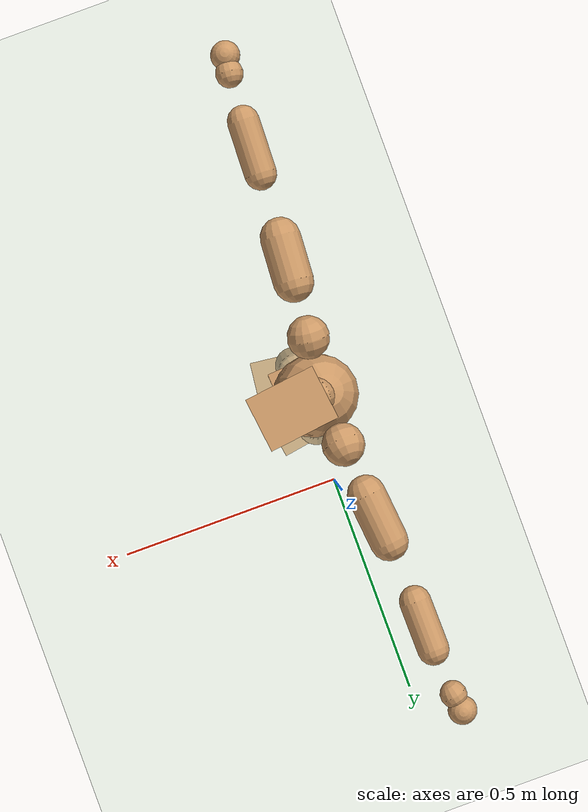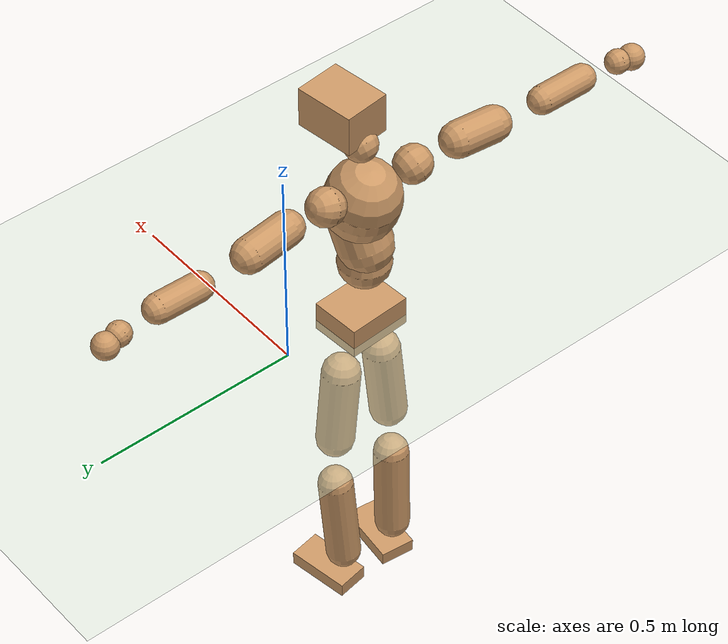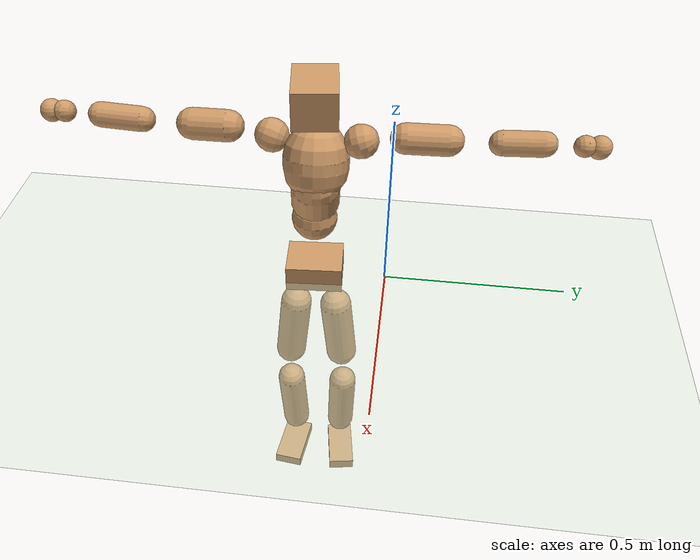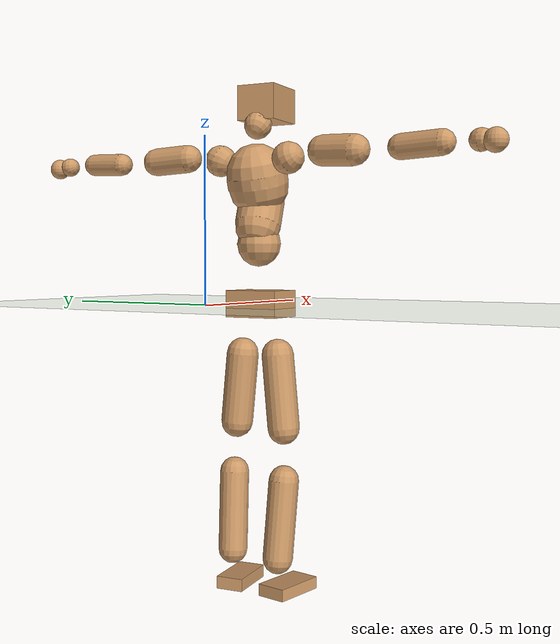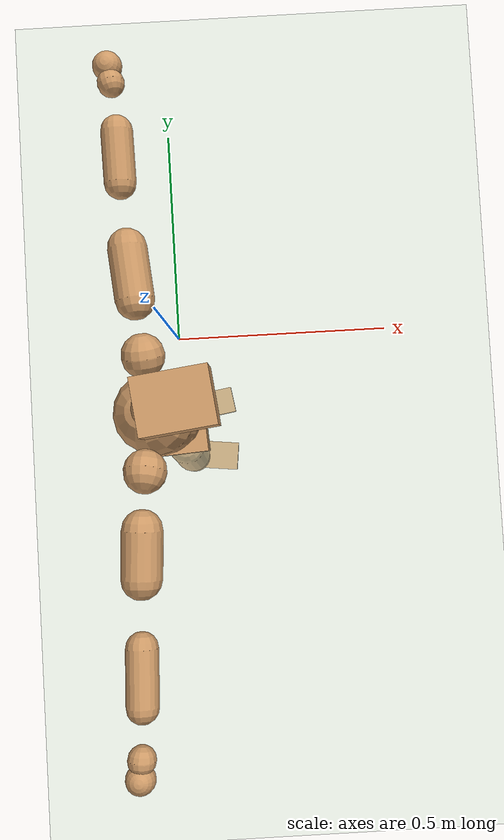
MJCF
<mujoco model="humanoid">
  <compiler coordinate="local" angle="radian"/>
  <default>
    <joint damping="0.0" armature="0.01" stiffness="0.0" limited="true"/>
    <geom conaffinity="1" condim="3" contype="7" margin="0.001" rgba="0.8 0.6 .4 1"/>
  </default>
  <asset>
    <texture type="skybox" builtin="gradient" rgb1=".4 .5 .6" rgb2="0 0 0" width="100" height="100"/>
    <texture builtin="flat" height="1278" mark="cross" markrgb="1 1 1" name="texgeom" random="0.01" rgb1="0.8 0.6 0.4" rgb2="0.8 0.6 0.4" type="cube" width="127"/>
    <texture builtin="checker" height="100" name="texplane" rgb1="0 0 0" rgb2="0.8 0.8 0.8" type="2d" width="100"/>
    <material name="MatPlane" reflectance="0.5" shininess="1" specular="1" texrepeat="60 60" texture="texplane"/>
    <material name="geom" texture="texgeom" texuniform="true"/>
  </asset>
  <worldbody>
    <light cutoff="100" diffuse="1 1 1" dir="-0 0 -1.3" directional="true" exponent="1" pos="0 0 1.3" specular=".1 .1 .1"/>
    <geom conaffinity="1" condim="3" name="floor" pos="0 0 0" rgba="0.8 0.9 0.8 1" size="100 100 .2" type="plane" material="MatPlane"/>
    <body name="Pelvis" pos="-0.0019 -0.1999 0.0218">
      <freejoint name="Pelvis"/>
      <geom type="box" contype="1" conaffinity="1" density="5359.374489" pos="-0.0049 -0.0003 -0.0113" size="0.062 0.0787 0.0381" quat="0.9995 0.0000 0.0000 0.0324" name="Pelvis"/>
      <body name="L_Hip" pos="-0.008 0.0524 -0.0811">
        <joint name="L_Hip_x" type="hinge" pos="0 0 0" axis="1 0 0" stiffness="1600" damping="160" armature="0.02" range="-180.0000 180.0000"/>
        <joint name="L_Hip_y" type="hinge" pos="0 0 0" axis="0 1 0" stiffness="1600" damping="160" armature="0.02" range="-180.0000 180.0000"/>
        <joint name="L_Hip_z" type="hinge" pos="0 0 0" axis="0 0 1" stiffness="1600" damping="160" armature="0.02" range="-180.0000 180.0000"/>
        <geom type="capsule" contype="1" conaffinity="1" density="2040.816327" size="0.046" fromto="-0.0001 0.0074 -0.0756 -0.0004 0.0271 -0.2759" name="L_Hip"/>
        <body name="L_Knee" pos="-0.0004 0.0345 -0.3515">
          <joint name="L_Knee_x" type="hinge" pos="0 0 0" axis="1 0 0" stiffness="1600" damping="160" armature="0.02" range="-180.0000 180.0000"/>
          <joint name="L_Knee_y" type="hinge" pos="0 0 0" axis="0 1 0" stiffness="1600" damping="160" armature="0.02" range="-180.0000 180.0000"/>
          <joint name="L_Knee_z" type="hinge" pos="0 0 0" axis="0 0 1" stiffness="1600" damping="160" armature="0.02" range="-180.0000 180.0000"/>
          <geom type="capsule" contype="1" conaffinity="1" density="1234.567901" size="0.0422" fromto="-0.0059 -0.0022 -0.0720 -0.0244 -0.0092 -0.2983" name="L_Knee"/>
          <body name="L_Ankle" pos="-0.0303 -0.0114 -0.3703">
            <joint name="L_Ankle_x" type="hinge" pos="0 0 0" axis="1 0 0" stiffness="1600" damping="160" armature="0.02" range="-180.0000 180.0000"/>
            <joint name="L_Ankle_y" type="hinge" pos="0 0 0" axis="0 1 0" stiffness="1600" damping="160" armature="0.02" range="-180.0000 180.0000"/>
            <joint name="L_Ankle_z" type="hinge" pos="0 0 0" axis="0 0 1" stiffness="1600" damping="160" armature="0.02" range="-180.0000 180.0000"/>
            <geom type="box" contype="1" conaffinity="1" density="999.999922" pos="0.0555 0.0091 -0.0265" size="0.0789 0.04 0.0182" quat="0.9967 0.0000 0.0000 0.0811" name="L_Ankle"/>
            <body name="L_Toe" pos="0.111 0.0182 -0.053">
              <joint name="L_Toe_x" type="hinge" pos="0 0 0" axis="1 0 0" stiffness="1000" damping="100" armature="0.02" range="-180.0000 180.0000"/>
              <joint name="L_Toe_y" type="hinge" pos="0 0 0" axis="0 1 0" stiffness="1000" damping="100" armature="0.02" range="-180.0000 180.0000"/>
              <joint name="L_Toe_z" type="hinge" pos="0 0 0" axis="0 0 1" stiffness="1000" damping="100" armature="0.02" range="-180.0000 180.0000"/>
              <geom type="box" contype="1" conaffinity="1" density="8949356.832807" pos="0.0000 0.0000 0.0276" size="0.0008 0.002 0.001" quat="0.9961 0.0000 0.0000 0.0882" name="L_Toe"/>
            </body>
          </body>
        </body>
      </body>
      <body name="R_Hip" pos="-0.005 -0.0505 -0.0804">
        <joint name="R_Hip_x" type="hinge" pos="0 0 0" axis="1 0 0" stiffness="1600" damping="160" armature="0.02" range="-180.0000 180.0000"/>
        <joint name="R_Hip_y" type="hinge" pos="0 0 0" axis="0 1 0" stiffness="1600" damping="160" armature="0.02" range="-180.0000 180.0000"/>
        <joint name="R_Hip_z" type="hinge" pos="0 0 0" axis="0 0 1" stiffness="1600" damping="160" armature="0.02" range="-180.0000 180.0000"/>
        <geom type="capsule" contype="1" conaffinity="1" density="2040.816327" size="0.0454" fromto="-0.0005 -0.0078 -0.0750 -0.0019 -0.0295 -0.2839" name="R_Hip"/>
        <body name="R_Knee" pos="-0.0024 -0.0372 -0.3589">
          <joint name="R_Knee_x" type="hinge" pos="0 0 0" axis="1 0 0" stiffness="1600" damping="160" armature="0.02" range="-180.0000 180.0000"/>
          <joint name="R_Knee_y" type="hinge" pos="0 0 0" axis="0 1 0" stiffness="1600" damping="160" armature="0.02" range="-180.0000 180.0000"/>
          <joint name="R_Knee_z" type="hinge" pos="0 0 0" axis="0 0 1" stiffness="1600" damping="160" armature="0.02" range="-180.0000 180.0000"/>
          <geom type="capsule" contype="1" conaffinity="1" density="1234.567901" size="0.0429" fromto="-0.0057 0.0029 -0.0727 -0.0231 0.0118 -0.2971" name="R_Knee"/>
          <body name="R_Ankle" pos="-0.0288 0.0147 -0.3697">
            <joint name="R_Ankle_x" type="hinge" pos="0 0 0" axis="1 0 0" stiffness="1600" damping="160" armature="0.02" range="-180.0000 180.0000"/>
            <joint name="R_Ankle_y" type="hinge" pos="0 0 0" axis="0 1 0" stiffness="1600" damping="160" armature="0.02" range="-180.0000 180.0000"/>
            <joint name="R_Ankle_z" type="hinge" pos="0 0 0" axis="0 0 1" stiffness="1600" damping="160" armature="0.02" range="-180.0000 180.0000"/>
            <geom type="box" contype="1" conaffinity="1" density="999.999982" pos="0.0566 -0.0065 -0.0206" size="0.0801 0.0433 0.0173" quat="0.9984 0.0000 0.0000 -0.0573" name="R_Ankle"/>
            <body name="R_Toe" pos="0.1131 -0.013 -0.0412">
              <joint name="R_Toe_x" type="hinge" pos="0 0 0" axis="1 0 0" stiffness="1000" damping="100" armature="0.02" range="-180.0000 180.0000"/>
              <joint name="R_Toe_y" type="hinge" pos="0 0 0" axis="0 1 0" stiffness="1000" damping="100" armature="0.02" range="-180.0000 180.0000"/>
              <joint name="R_Toe_z" type="hinge" pos="0 0 0" axis="0 0 1" stiffness="1000" damping="100" armature="0.02" range="-180.0000 180.0000"/>
              <geom type="box" contype="1" conaffinity="1" density="8634294.256714" pos="0.0000 0.0000 0.0237" size="0.0008 0.0021 0.001" quat="0.9989 0.0000 0.0000 -0.0477" name="R_Toe"/>
            </body>
          </body>
        </body>
      </body>
      <body name="Torso" pos="-0.0166 -0.0038 0.0936">
        <joint name="Torso_x" type="hinge" pos="0 0 0" axis="1 0 0" stiffness="2000" damping="200" armature="0.02" range="-180.0000 180.0000"/>
        <joint name="Torso_y" type="hinge" pos="0 0 0" axis="0 1 0" stiffness="2000" damping="200" armature="0.02" range="-180.0000 180.0000"/>
        <joint name="Torso_z" type="hinge" pos="0 0 0" axis="0 0 1" stiffness="2000" damping="200" armature="0.02" range="-180.0000 180.0000"/>
        <geom type="capsule" contype="1" conaffinity="1" density="2040.816327" size="0.0625" fromto="0.0006 0.0023 0.0631 0.0006 0.0023 0.0651" name="Torso"/>
        <body name="Spine" pos="0.0012 0.0046 0.1282">
          <joint name="Spine_x" type="hinge" pos="0 0 0" axis="1 0 0" stiffness="2000" damping="200" armature="0.02" range="-180.0000 180.0000"/>
          <joint name="Spine_y" type="hinge" pos="0 0 0" axis="0 1 0" stiffness="2000" damping="200" armature="0.02" range="-180.0000 180.0000"/>
          <joint name="Spine_z" type="hinge" pos="0 0 0" axis="0 0 1" stiffness="2000" damping="200" armature="0.02" range="-180.0000 180.0000"/>
          <geom type="capsule" contype="1" conaffinity="1" density="2040.816327" size="0.065" fromto="0.0245 0.0046 0.0600 -0.0050 -0.0009 -0.0122" name="Spine"/>
          <body name="Chest" pos="0.0195 0.0037 0.0479">
            <joint name="Chest_x" type="hinge" pos="0 0 0" axis="1 0 0" stiffness="2000" damping="200" armature="0.02" range="-180.0000 180.0000"/>
            <joint name="Chest_y" type="hinge" pos="0 0 0" axis="0 1 0" stiffness="2000" damping="200" armature="0.02" range="-180.0000 180.0000"/>
            <joint name="Chest_z" type="hinge" pos="0 0 0" axis="0 0 1" stiffness="2000" damping="200" armature="0.02" range="-180.0000 180.0000"/>
            <geom type="capsule" contype="1" conaffinity="1" density="2040.816327" size="0.0864" fromto="-0.0240 -0.0007 0.0829 -0.0153 -0.0005 0.0528" name="Chest"/>
            <body name="Neck" pos="-0.0413 -0.0015 0.1908">
              <joint name="Neck_x" type="hinge" pos="0 0 0" axis="1 0 0" stiffness="1000" damping="100" armature="0.02" range="-180.0000 180.0000"/>
              <joint name="Neck_y" type="hinge" pos="0 0 0" axis="0 1 0" stiffness="1000" damping="100" armature="0.02" range="-180.0000 180.0000"/>
              <joint name="Neck_z" type="hinge" pos="0 0 0" axis="0 0 1" stiffness="1000" damping="100" armature="0.02" range="-180.0000 180.0000"/>
              <geom type="capsule" contype="1" conaffinity="1" density="1000" size="0.0391" fromto="0.0252 0.0023 0.0298 0.0265 0.0024 0.0313" name="Neck"/>
              <body name="Head" pos="0.0518 0.0047 0.0611">
                <joint name="Head_x" type="hinge" pos="0 0 0" axis="1 0 0" stiffness="1000" damping="100" armature="0.02" range="-180.0000 180.0000"/>
                <joint name="Head_y" type="hinge" pos="0 0 0" axis="0 1 0" stiffness="1000" damping="100" armature="0.02" range="-180.0000 180.0000"/>
                <joint name="Head_z" type="hinge" pos="0 0 0" axis="0 0 1" stiffness="1000" damping="100" armature="0.02" range="-180.0000 180.0000"/>
                <geom type="box" contype="1" conaffinity="1" density="2250.000122" pos="0.0269 0.0034 0.0315" size="0.0725 0.0559 0.0487" quat="0.9981 0.0000 0.0000 0.0620" name="Head"/>
              </body>
            </body>
            <body name="L_Thorax" pos="-0.0362 0.0721 0.1101">
              <joint name="L_Thorax_x" type="hinge" pos="0 0 0" axis="1 0 0" stiffness="1000" damping="100" armature="0.02" range="-180.0000 180.0000"/>
              <joint name="L_Thorax_y" type="hinge" pos="0 0 0" axis="0 1 0" stiffness="1000" damping="100" armature="0.02" range="-180.0000 180.0000"/>
              <joint name="L_Thorax_z" type="hinge" pos="0 0 0" axis="0 0 1" stiffness="1000" damping="100" armature="0.02" range="-180.0000 180.0000"/>
              <geom type="capsule" contype="1" conaffinity="1" density="1000" size="0.0445" fromto="-0.0020 0.0400 0.0145 -0.0021 0.0419 0.0152" name="L_Thorax"/>
              <body name="L_Shoulder" pos="-0.0041 0.0819 0.0297">
                <joint name="L_Shoulder_x" type="hinge" pos="0 0 0" axis="1 0 0" stiffness="1000" damping="100" armature="0.02" range="-720.0000 720.0000"/>
                <joint name="L_Shoulder_y" type="hinge" pos="0 0 0" axis="0 1 0" stiffness="1000" damping="100" armature="0.02" range="-720.0000 720.0000"/>
                <joint name="L_Shoulder_z" type="hinge" pos="0 0 0" axis="0 0 1" stiffness="1000" damping="100" armature="0.02" range="-720.0000 720.0000"/>
                <geom type="capsule" contype="1" conaffinity="1" density="1000" size="0.04" fromto="-0.0070 0.0696 -0.0030 -0.0178 0.1771 -0.0077" name="L_Shoulder"/>
                <body name="L_Elbow" pos="-0.0247 0.2467 -0.0107">
                  <joint name="L_Elbow_x" type="hinge" pos="0 0 0" axis="1 0 0" stiffness="1000" damping="100" armature="0.02" range="-720.0000 720.0000"/>
                  <joint name="L_Elbow_y" type="hinge" pos="0 0 0" axis="0 1 0" stiffness="1000" damping="100" armature="0.02" range="-720.0000 720.0000"/>
                  <joint name="L_Elbow_z" type="hinge" pos="0 0 0" axis="0 0 1" stiffness="1000" damping="100" armature="0.02" range="-720.0000 720.0000"/>
                  <geom type="capsule" contype="1" conaffinity="1" density="1000" size="0.0327" fromto="-0.0009 0.0627 0.0022 -0.0024 0.1680 0.0060" name="L_Elbow"/>
                  <body name="L_Wrist" pos="-0.0033 0.2307 0.0083">
                    <joint name="L_Wrist_x" type="hinge" pos="0 0 0" axis="1 0 0" stiffness="600" damping="60" armature="0.02" range="-180.0000 180.0000"/>
                    <joint name="L_Wrist_y" type="hinge" pos="0 0 0" axis="0 1 0" stiffness="600" damping="60" armature="0.02" range="-180.0000 180.0000"/>
                    <joint name="L_Wrist_z" type="hinge" pos="0 0 0" axis="0 0 1" stiffness="600" damping="60" armature="0.02" range="-180.0000 180.0000"/>
                    <geom type="capsule" contype="1" conaffinity="1" density="1000" size="0.0278" fromto="-0.0062 0.0365 -0.0044 -0.0066 0.0384 -0.0046" name="L_Wrist"/>
                    <body name="L_Hand" pos="-0.0128 0.0749 -0.009">
                      <joint name="L_Hand_x" type="hinge" pos="0 0 0" axis="1 0 0" stiffness="600" damping="60" armature="0.02" range="-180.0000 180.0000"/>
                      <joint name="L_Hand_y" type="hinge" pos="0 0 0" axis="0 1 0" stiffness="600" damping="60" armature="0.02" range="-180.0000 180.0000"/>
                      <joint name="L_Hand_z" type="hinge" pos="0 0 0" axis="0 0 1" stiffness="600" damping="60" armature="0.02" range="-180.0000 180.0000"/>
                      <geom type="sphere" contype="1" conaffinity="1" density="1000" size="0.0302" pos="0.0000 0.0000 0.0000" name="L_Hand"/>
                    </body>
                  </body>
                </body>
              </body>
            </body>
            <body name="R_Thorax" pos="-0.0404 -0.0742 0.1063">
              <joint name="R_Thorax_x" type="hinge" pos="0 0 0" axis="1 0 0" stiffness="1000" damping="100" armature="0.02" range="-180.0000 180.0000"/>
              <joint name="R_Thorax_y" type="hinge" pos="0 0 0" axis="0 1 0" stiffness="1000" damping="100" armature="0.02" range="-180.0000 180.0000"/>
              <joint name="R_Thorax_z" type="hinge" pos="0 0 0" axis="0 0 1" stiffness="1000" damping="100" armature="0.02" range="-180.0000 180.0000"/>
              <geom type="capsule" contype="1" conaffinity="1" density="1000" size="0.0444" fromto="-0.0056 -0.0427 0.0144 -0.0058 -0.0446 0.0150" name="R_Thorax"/>
              <body name="R_Shoulder" pos="-0.0114 -0.0874 0.0293">
                <joint name="R_Shoulder_x" type="hinge" pos="0 0 0" axis="1 0 0" stiffness="1000" damping="100" armature="0.02" range="-720.0000 720.0000"/>
                <joint name="R_Shoulder_y" type="hinge" pos="0 0 0" axis="0 1 0" stiffness="1000" damping="100" armature="0.02" range="-720.0000 720.0000"/>
                <joint name="R_Shoulder_z" type="hinge" pos="0 0 0" axis="0 0 1" stiffness="1000" damping="100" armature="0.02" range="-720.0000 720.0000"/>
                <geom type="capsule" contype="1" conaffinity="1" density="1000" size="0.0421" fromto="-0.0045 -0.0719 -0.0032 -0.0104 -0.1677 -0.0074" name="R_Shoulder"/>
                <body name="R_Elbow" pos="-0.0149 -0.2397 -0.0106">
                  <joint name="R_Elbow_x" type="hinge" pos="0 0 0" axis="1 0 0" stiffness="1000" damping="100" armature="0.02" range="-720.0000 720.0000"/>
                  <joint name="R_Elbow_y" type="hinge" pos="0 0 0" axis="0 1 0" stiffness="1000" damping="100" armature="0.02" range="-720.0000 720.0000"/>
                  <joint name="R_Elbow_z" type="hinge" pos="0 0 0" axis="0 0 1" stiffness="1000" damping="100" armature="0.02" range="-720.0000 720.0000"/>
                  <geom type="capsule" contype="1" conaffinity="1" density="1000" size="0.0334" fromto="-0.0020 -0.0633 0.0019 -0.0055 -0.1768 0.0054" name="R_Elbow"/>
                  <body name="R_Wrist" pos="-0.0075 -0.2402 0.0073">
                    <joint name="R_Wrist_x" type="hinge" pos="0 0 0" axis="1 0 0" stiffness="600" damping="60" armature="0.02" range="-180.0000 180.0000"/>
                    <joint name="R_Wrist_y" type="hinge" pos="0 0 0" axis="0 1 0" stiffness="600" damping="60" armature="0.02" range="-180.0000 180.0000"/>
                    <joint name="R_Wrist_z" type="hinge" pos="0 0 0" axis="0 0 1" stiffness="600" damping="60" armature="0.02" range="-180.0000 180.0000"/>
                    <geom type="capsule" contype="1" conaffinity="1" density="1000" size="0.0289" fromto="-0.0047 -0.0373 -0.0033 -0.0049 -0.0393 -0.0034" name="R_Wrist"/>
                    <body name="R_Hand" pos="-0.0096 -0.0766 -0.0067">
                      <joint name="R_Hand_x" type="hinge" pos="0 0 0" axis="1 0 0" stiffness="600" damping="60" armature="0.02" range="-180.0000 180.0000"/>
                      <joint name="R_Hand_y" type="hinge" pos="0 0 0" axis="0 1 0" stiffness="600" damping="60" armature="0.02" range="-180.0000 180.0000"/>
                      <joint name="R_Hand_z" type="hinge" pos="0 0 0" axis="0 0 1" stiffness="600" damping="60" armature="0.02" range="-180.0000 180.0000"/>
                      <geom type="sphere" contype="1" conaffinity="1" density="1000" size="0.0307" pos="0.0000 0.0000 0.0000" name="R_Hand"/>
                    </body>
                  </body>
                </body>
              </body>
            </body>
          </body>
        </body>
      </body>
    </body>
  </worldbody>
  <actuator>
    <motor name="L_Hip_x" joint="L_Hip_x" gear="500"/>
    <motor name="L_Hip_y" joint="L_Hip_y" gear="500"/>
    <motor name="L_Hip_z" joint="L_Hip_z" gear="500"/>
    <motor name="L_Knee_x" joint="L_Knee_x" gear="500"/>
    <motor name="L_Knee_y" joint="L_Knee_y" gear="500"/>
    <motor name="L_Knee_z" joint="L_Knee_z" gear="500"/>
    <motor name="L_Ankle_x" joint="L_Ankle_x" gear="500"/>
    <motor name="L_Ankle_y" joint="L_Ankle_y" gear="500"/>
    <motor name="L_Ankle_z" joint="L_Ankle_z" gear="500"/>
    <motor name="L_Toe_x" joint="L_Toe_x" gear="500"/>
    <motor name="L_Toe_y" joint="L_Toe_y" gear="500"/>
    <motor name="L_Toe_z" joint="L_Toe_z" gear="500"/>
    <motor name="R_Hip_x" joint="R_Hip_x" gear="500"/>
    <motor name="R_Hip_y" joint="R_Hip_y" gear="500"/>
    <motor name="R_Hip_z" joint="R_Hip_z" gear="500"/>
    <motor name="R_Knee_x" joint="R_Knee_x" gear="500"/>
    <motor name="R_Knee_y" joint="R_Knee_y" gear="500"/>
    <motor name="R_Knee_z" joint="R_Knee_z" gear="500"/>
    <motor name="R_Ankle_x" joint="R_Ankle_x" gear="500"/>
    <motor name="R_Ankle_y" joint="R_Ankle_y" gear="500"/>
    <motor name="R_Ankle_z" joint="R_Ankle_z" gear="500"/>
    <motor name="R_Toe_x" joint="R_Toe_x" gear="500"/>
    <motor name="R_Toe_y" joint="R_Toe_y" gear="500"/>
    <motor name="R_Toe_z" joint="R_Toe_z" gear="500"/>
    <motor name="Torso_x" joint="Torso_x" gear="500"/>
    <motor name="Torso_y" joint="Torso_y" gear="500"/>
    <motor name="Torso_z" joint="Torso_z" gear="500"/>
    <motor name="Spine_x" joint="Spine_x" gear="500"/>
    <motor name="Spine_y" joint="Spine_y" gear="500"/>
    <motor name="Spine_z" joint="Spine_z" gear="500"/>
    <motor name="Chest_x" joint="Chest_x" gear="500"/>
    <motor name="Chest_y" joint="Chest_y" gear="500"/>
    <motor name="Chest_z" joint="Chest_z" gear="500"/>
    <motor name="Neck_x" joint="Neck_x" gear="500"/>
    <motor name="Neck_y" joint="Neck_y" gear="500"/>
    <motor name="Neck_z" joint="Neck_z" gear="500"/>
    <motor name="Head_x" joint="Head_x" gear="500"/>
    <motor name="Head_y" joint="Head_y" gear="500"/>
    <motor name="Head_z" joint="Head_z" gear="500"/>
    <motor name="L_Thorax_x" joint="L_Thorax_x" gear="500"/>
    <motor name="L_Thorax_y" joint="L_Thorax_y" gear="500"/>
    <motor name="L_Thorax_z" joint="L_Thorax_z" gear="500"/>
    <motor name="L_Shoulder_x" joint="L_Shoulder_x" gear="500"/>
    <motor name="L_Shoulder_y" joint="L_Shoulder_y" gear="500"/>
    <motor name="L_Shoulder_z" joint="L_Shoulder_z" gear="500"/>
    <motor name="L_Elbow_x" joint="L_Elbow_x" gear="500"/>
    <motor name="L_Elbow_y" joint="L_Elbow_y" gear="500"/>
    <motor name="L_Elbow_z" joint="L_Elbow_z" gear="500"/>
    <motor name="L_Wrist_x" joint="L_Wrist_x" gear="500"/>
    <motor name="L_Wrist_y" joint="L_Wrist_y" gear="500"/>
    <motor name="L_Wrist_z" joint="L_Wrist_z" gear="500"/>
    <motor name="L_Hand_x" joint="L_Hand_x" gear="500"/>
    <motor name="L_Hand_y" joint="L_Hand_y" gear="500"/>
    <motor name="L_Hand_z" joint="L_Hand_z" gear="500"/>
    <motor name="R_Thorax_x" joint="R_Thorax_x" gear="500"/>
    <motor name="R_Thorax_y" joint="R_Thorax_y" gear="500"/>
    <motor name="R_Thorax_z" joint="R_Thorax_z" gear="500"/>
    <motor name="R_Shoulder_x" joint="R_Shoulder_x" gear="500"/>
    <motor name="R_Shoulder_y" joint="R_Shoulder_y" gear="500"/>
    <motor name="R_Shoulder_z" joint="R_Shoulder_z" gear="500"/>
    <motor name="R_Elbow_x" joint="R_Elbow_x" gear="500"/>
    <motor name="R_Elbow_y" joint="R_Elbow_y" gear="500"/>
    <motor name="R_Elbow_z" joint="R_Elbow_z" gear="500"/>
    <motor name="R_Wrist_x" joint="R_Wrist_x" gear="500"/>
    <motor name="R_Wrist_y" joint="R_Wrist_y" gear="500"/>
    <motor name="R_Wrist_z" joint="R_Wrist_z" gear="500"/>
    <motor name="R_Hand_x" joint="R_Hand_x" gear="500"/>
    <motor name="R_Hand_y" joint="R_Hand_y" gear="500"/>
    <motor name="R_Hand_z" joint="R_Hand_z" gear="500"/>
  </actuator>
  <contact>
    <exclude body1="Torso" body2="Chest"/>
    <exclude body1="Head" body2="Chest"/>
    <exclude body1="R_Knee" body2="R_Toe"/>
    <exclude body1="R_Knee" body2="L_Ankle"/>
    <exclude body1="R_Knee" body2="L_Toe"/>
    <exclude body1="L_Knee" body2="L_Toe"/>
    <exclude body1="L_Knee" body2="R_Ankle"/>
    <exclude body1="L_Knee" body2="R_Toe"/>
    <exclude body1="L_Shoulder" body2="Chest"/>
    <exclude body1="R_Shoulder" body2="Chest"/>
  </contact>
  <sensor/>
  <size njmax="700" nconmax="700"/>
</mujoco>
